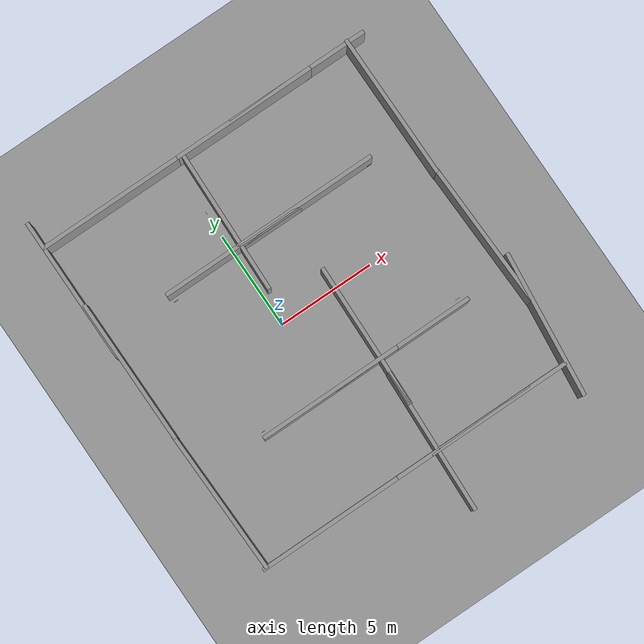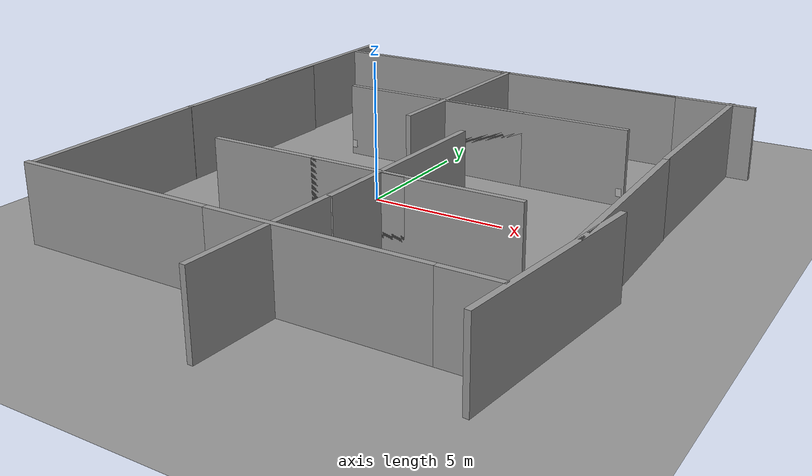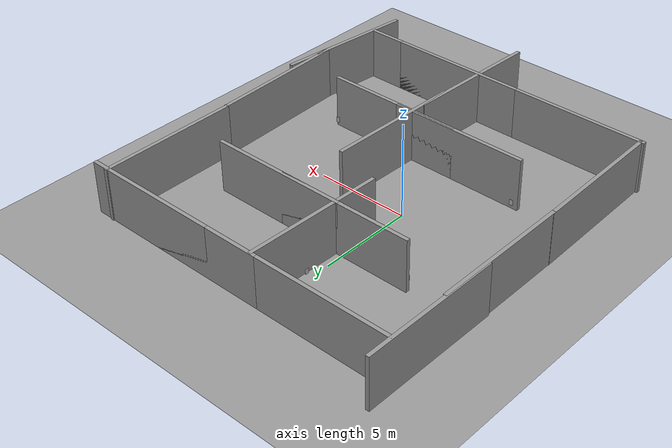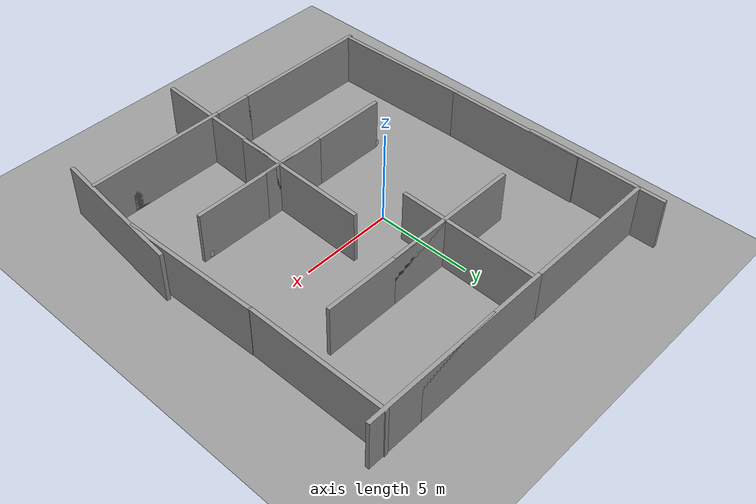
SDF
<sdf version="1.4">
 <world name="default">
  <light name="sun" type="directional">
   <pose>0 0 10 0 -0 0</pose>
   <diffuse>0.8 0.8 0.8 1</diffuse>
   <specular>0.2 0.2 0.2 1</specular>
   <attenuation>
    <range>1000</range>
    <constant>0.9</constant>
    <linear>0.01</linear>
    <quadratic>0.001</quadratic>
   </attenuation>
   <direction>0.5 0.1 -0.9</direction>
  </light>
  <scene><ambient>0.4 0.4 0.4 1</ambient><background>0.7 0.7 0.7 1</background><shadows>1</shadows></scene>
  <physics type="ode">
   <max_step_size>0.01</max_step_size>
   <real_time_factor>1</real_time_factor>
   <real_time_update_rate>100</real_time_update_rate>
   <gravity>0 0 -9.8</gravity>
  </physics>
  <model name="ground_plane_0">
   <static>1</static>
   <link name="link">
    <collision name="collision">
     <geometry><plane><normal>0 0 1</normal><size>100 100</size></plane></geometry>
     <surface><friction><ode><mu>100</mu><mu2>50</mu2></ode></friction></surface>
    </collision>
    <visual name="visual">
     <cast_shadows>0</cast_shadows>
     <geometry><plane><normal>0 0 1</normal><size>100 100</size></plane></geometry>
     <material>
      <script><uri>file://media/materials/scripts/gazebo.material</uri><name>Gazebo/Grey</name></script>
     </material>
    </visual>
    <velocity_decay><linear>0</linear><angular>0</angular></velocity_decay>
   </link>
   <pose>0.497681 0 0 0 -0 0</pose>
  </model>
  <spherical_coordinates>
   <surface_model>EARTH_WGS84</surface_model>
   <latitude_deg>0</latitude_deg>
   <longitude_deg>0</longitude_deg>
   <elevation>0</elevation>
   <heading_deg>0</heading_deg>
  </spherical_coordinates>
  <model name="grey_wall">
   <static>1</static>
   <link name="link">
    <pose>0 0 1.4 0 -0 0</pose>
    <collision name="collision"><geometry><box><size>7.5 0.2 2.8</size></box></geometry></collision>
    <visual name="visual">
     <cast_shadows>0</cast_shadows>
     <geometry><box><size>7.5 0.2 2.8</size></box></geometry>
     <material>
      <script>
       <uri>model://grey_wall/materials/scripts</uri>
       <uri>model://grey_wall/materials/textures</uri>
       <name>vrc/grey_wall</name>
      </script>
     </material>
    </visual>
    <velocity_decay><linear>0</linear><angular>0</angular></velocity_decay>
   </link>
   <pose>0 -4 0 0 -0 0</pose>
  </model>
  <model name="grey_wall_0">
   <static>1</static>
   <link name="link">
    <pose>0 0 1.4 0 -0 0</pose>
    <collision name="collision"><geometry><box><size>7.5 0.2 2.8</size></box></geometry></collision>
    <visual name="visual">
     <cast_shadows>0</cast_shadows>
     <geometry><box><size>7.5 0.2 2.8</size></box></geometry>
     <material>
      <script>
       <uri>model://grey_wall/materials/scripts</uri>
       <uri>model://grey_wall/materials/textures</uri>
       <name>vrc/grey_wall</name>
      </script>
     </material>
    </visual>
    <velocity_decay><linear>0</linear><angular>0</angular></velocity_decay>
   </link>
   <pose>0 4 0 0 -0 0</pose>
  </model>
  <model name="grey_wall_1">
   <static>1</static>
   <link name="link">
    <pose>0 0 1.4 0 -0 0</pose>
    <collision name="collision"><geometry><box><size>7.5 0.2 2.8</size></box></geometry></collision>
    <visual name="visual">
     <cast_shadows>0</cast_shadows>
     <geometry><box><size>7.5 0.2 2.8</size></box></geometry>
     <material>
      <script>
       <uri>model://grey_wall/materials/scripts</uri>
       <uri>model://grey_wall/materials/textures</uri>
       <name>vrc/grey_wall</name>
      </script>
     </material>
    </visual>
    <velocity_decay><linear>0</linear><angular>0</angular></velocity_decay>
   </link>
   <pose>4 9 0 0 -0 0</pose>
  </model>
  <model name="grey_wall_2">
   <static>1</static>
   <link name="link">
    <pose>0 0 1.4 0 -0 0</pose>
    <collision name="collision"><geometry><box><size>7.5 0.2 2.8</size></box></geometry></collision>
    <visual name="visual">
     <cast_shadows>0</cast_shadows>
     <geometry><box><size>7.5 0.2 2.8</size></box></geometry>
     <material>
      <script>
       <uri>model://grey_wall/materials/scripts</uri>
       <uri>model://grey_wall/materials/textures</uri>
       <name>vrc/grey_wall</name>
      </script>
     </material>
    </visual>
    <velocity_decay><linear>0</linear><angular>0</angular></velocity_decay>
   </link>
   <pose>-3.47074 9 0 0 -0 0</pose>
  </model>
  <model name="grey_wall_3">
   <static>1</static>
   <link name="link">
    <pose>0 0 1.4 0 -0 0</pose>
    <collision name="collision"><geometry><box><size>7.5 0.2 2.8</size></box></geometry></collision>
    <visual name="visual">
     <cast_shadows>0</cast_shadows>
     <geometry><box><size>7.5 0.2 2.8</size></box></geometry>
     <material>
      <script>
       <uri>model://grey_wall/materials/scripts</uri>
       <uri>model://grey_wall/materials/textures</uri>
       <name>vrc/grey_wall</name>
      </script>
     </material>
    </visual>
    <velocity_decay><linear>0</linear><angular>0</angular></velocity_decay>
   </link>
   <pose>4 -9 0 0 -0 0</pose>
  </model>
  <model name="grey_wall_4">
   <static>1</static>
   <link name="link">
    <pose>0 0 1.4 0 -0 0</pose>
    <collision name="collision"><geometry><box><size>7.5 0.2 2.8</size></box></geometry></collision>
    <visual name="visual">
     <cast_shadows>0</cast_shadows>
     <geometry><box><size>7.5 0.2 2.8</size></box></geometry>
     <material>
      <script>
       <uri>model://grey_wall/materials/scripts</uri>
       <uri>model://grey_wall/materials/textures</uri>
       <name>vrc/grey_wall</name>
      </script>
     </material>
    </visual>
    <velocity_decay><linear>0</linear><angular>0</angular></velocity_decay>
   </link>
   <pose>-3.42322 -9 0 0 -0 0</pose>
  </model>
  <model name="grey_wall_5">
   <static>1</static>
   <link name="link">
    <pose>0 0 1.4 0 -0 0</pose>
    <collision name="collision"><geometry><box><size>7.5 0.2 2.8</size></box></geometry></collision>
    <visual name="visual">
     <cast_shadows>0</cast_shadows>
     <geometry><box><size>7.5 0.2 2.8</size></box></geometry>
     <material>
      <script>
       <uri>model://grey_wall/materials/scripts</uri>
       <uri>model://grey_wall/materials/textures</uri>
       <name>vrc/grey_wall</name>
      </script>
     </material>
    </visual>
    <velocity_decay><linear>0</linear><angular>0</angular></velocity_decay>
   </link>
   <pose>-7.12028 2.01608 0 0 0 -1.56777</pose>
  </model>
  <model name="grey_wall_6">
   <static>1</static>
   <link name="link">
    <pose>0 0 1.4 0 -0 0</pose>
    <collision name="collision"><geometry><box><size>7.5 0.2 2.8</size></box></geometry></collision>
    <visual name="visual">
     <cast_shadows>0</cast_shadows>
     <geometry><box><size>7.5 0.2 2.8</size></box></geometry>
     <material>
      <script>
       <uri>model://grey_wall/materials/scripts</uri>
       <uri>model://grey_wall/materials/textures</uri>
       <name>vrc/grey_wall</name>
      </script>
     </material>
    </visual>
    <velocity_decay><linear>0</linear><angular>0</angular></velocity_decay>
   </link>
   <pose>-7.04106 -5.29288 0 0 0 -1.54905</pose>
  </model>
  <model name="grey_wall_7">
   <static>1</static>
   <link name="link">
    <pose>0 0 1.4 0 -0 0</pose>
    <collision name="collision"><geometry><box><size>7.5 0.2 2.8</size></box></geometry></collision>
    <visual name="visual">
     <cast_shadows>0</cast_shadows>
     <geometry><box><size>7.5 0.2 2.8</size></box></geometry>
     <material>
      <script>
       <uri>model://grey_wall/materials/scripts</uri>
       <uri>model://grey_wall/materials/textures</uri>
       <name>vrc/grey_wall</name>
      </script>
     </material>
    </visual>
    <velocity_decay><linear>0</linear><angular>0</angular></velocity_decay>
   </link>
   <pose>-7.192 6.65841 0 0 0 -1.57202</pose>
  </model>
  <model name="grey_wall_8">
   <static>1</static>
   <link name="link">
    <pose>0 0 1.4 0 -0 0</pose>
    <collision name="collision"><geometry><box><size>7.5 0.2 2.8</size></box></geometry></collision>
    <visual name="visual">
     <cast_shadows>0</cast_shadows>
     <geometry><box><size>7.5 0.2 2.8</size></box></geometry>
     <material>
      <script>
       <uri>model://grey_wall/materials/scripts</uri>
       <uri>model://grey_wall/materials/textures</uri>
       <name>vrc/grey_wall</name>
      </script>
     </material>
    </visual>
    <velocity_decay><linear>0</linear><angular>0</angular></velocity_decay>
   </link>
   <pose>6 -9 0 0 -0 0</pose>
  </model>
  <model name="grey_wall_9">
   <static>1</static>
   <link name="link">
    <pose>0 0 1.4 0 -0 0</pose>
    <collision name="collision"><geometry><box><size>7.5 0.2 2.8</size></box></geometry></collision>
    <visual name="visual">
     <cast_shadows>0</cast_shadows>
     <geometry><box><size>7.5 0.2 2.8</size></box></geometry>
     <material>
      <script>
       <uri>model://grey_wall/materials/scripts</uri>
       <uri>model://grey_wall/materials/textures</uri>
       <name>vrc/grey_wall</name>
      </script>
     </material>
    </visual>
    <velocity_decay><linear>0</linear><angular>0</angular></velocity_decay>
   </link>
   <pose>7 9 0 0 -0 0</pose>
  </model>
  <model name="grey_wall_10">
   <static>1</static>
   <link name="link">
    <pose>0 0 1.4 0 -0 0</pose>
    <collision name="collision"><geometry><box><size>7.5 0.2 2.8</size></box></geometry></collision>
    <visual name="visual">
     <cast_shadows>0</cast_shadows>
     <geometry><box><size>7.5 0.2 2.8</size></box></geometry>
     <material>
      <script>
       <uri>model://grey_wall/materials/scripts</uri>
       <uri>model://grey_wall/materials/textures</uri>
       <name>vrc/grey_wall</name>
      </script>
     </material>
    </visual>
    <velocity_decay><linear>0</linear><angular>0</angular></velocity_decay>
   </link>
   <pose>4 -4 0 0 -0 0</pose>
  </model>
  <model name="grey_wall_11">
   <static>1</static>
   <link name="link">
    <pose>0 0 1.4 0 -0 0</pose>
    <collision name="collision"><geometry><box><size>7.5 0.2 2.8</size></box></geometry></collision>
    <visual name="visual">
     <cast_shadows>0</cast_shadows>
     <geometry><box><size>7.5 0.2 2.8</size></box></geometry>
     <material>
      <script>
       <uri>model://grey_wall/materials/scripts</uri>
       <uri>model://grey_wall/materials/textures</uri>
       <name>vrc/grey_wall</name>
      </script>
     </material>
    </visual>
    <velocity_decay><linear>0</linear><angular>0</angular></velocity_decay>
   </link>
   <pose>4 4 0 0 -0 0</pose>
  </model>
  <model name="grey_wall_12">
   <static>1</static>
   <link name="link">
    <pose>0 0 1.4 0 -0 0</pose>
    <collision name="collision"><geometry><box><size>7.5 0.2 2.8</size></box></geometry></collision>
    <visual name="visual">
     <cast_shadows>0</cast_shadows>
     <geometry><box><size>7.5 0.2 2.8</size></box></geometry>
     <material>
      <script>
       <uri>model://grey_wall/materials/scripts</uri>
       <uri>model://grey_wall/materials/textures</uri>
       <name>vrc/grey_wall</name>
      </script>
     </material>
    </visual>
    <velocity_decay><linear>0</linear><angular>0</angular></velocity_decay>
   </link>
   <pose>9.85089 5.40045 0 0 0 -1.5674</pose>
  </model>
  <model name="grey_wall_13">
   <static>1</static>
   <link name="link">
    <pose>0 0 1.4 0 -0 0</pose>
    <collision name="collision"><geometry><box><size>7.5 0.2 2.8</size></box></geometry></collision>
    <visual name="visual">
     <cast_shadows>0</cast_shadows>
     <geometry><box><size>7.5 0.2 2.8</size></box></geometry>
     <material>
      <script>
       <uri>model://grey_wall/materials/scripts</uri>
       <uri>model://grey_wall/materials/textures</uri>
       <name>vrc/grey_wall</name>
      </script>
     </material>
    </visual>
    <velocity_decay><linear>0</linear><angular>0</angular></velocity_decay>
   </link>
   <pose>10 -2 0 0 0 -1.53964</pose>
  </model>
  <model name="grey_wall_14">
   <static>1</static>
   <link name="link">
    <pose>0 0 1.4 0 -0 0</pose>
    <collision name="collision"><geometry><box><size>7.5 0.2 2.8</size></box></geometry></collision>
    <visual name="visual">
     <cast_shadows>0</cast_shadows>
     <geometry><box><size>7.5 0.2 2.8</size></box></geometry>
     <material>
      <script>
       <uri>model://grey_wall/materials/scripts</uri>
       <uri>model://grey_wall/materials/textures</uri>
       <name>vrc/grey_wall</name>
      </script>
     </material>
    </visual>
    <velocity_decay><linear>0</linear><angular>0</angular></velocity_decay>
   </link>
   <pose>10 -7 0 0 0 -1.67587</pose>
  </model>
  <model name="green_image">
   <static>0</static>
   <link name="link">
    <collision name="collision">
     <geometry><box><size>0.2 0.2 0.2</size></box></geometry>
     <surface><friction><ode><mu>100</mu><mu2>50</mu2></ode></friction></surface>
    </collision>
    <visual name="visual">
     <pose>-6 -0.11 0.4 1.57 -0 0</pose>
     <cast_shadows>0</cast_shadows>
     <geometry><plane><normal>0 0 1</normal><size>0.21 0.297</size></plane></geometry>
     <material>
      <script>
       <uri>model://green_image/materials/scripts</uri>
       <uri>model://green_image/materials/textures</uri>
       <name>green_image/Image</name>
      </script>
     </material>
    </visual>
    <velocity_decay><linear>0</linear><angular>0</angular></velocity_decay>
    <inertial>
     <inertia><ixx>1</ixx><ixy>0</ixy><ixz>0</ixz><iyy>1</iyy><iyz>0</iyz><izz>1</izz></inertia>
     <mass>1</mass>
    </inertial>
   </link>
   <pose>2.50184 3.79868 0.099998 -2.2e-05 3e-06 -0.00097</pose>
  </model>
  <model name="red_image">
   <static>0</static>
   <link name="link">
    <collision name="collision">
     <geometry><box><size>0.2 0.2 0.2</size></box></geometry>
     <surface><friction><ode><mu>100</mu><mu2>50</mu2></ode></friction></surface>
    </collision>
    <visual name="visual">
     <pose>-6 -0.11 0.4 1.57 -0 0</pose>
     <cast_shadows>0</cast_shadows>
     <geometry><plane><normal>0 0 1</normal><size>0.21 0.297</size></plane></geometry>
     <material>
      <script>
       <uri>model://red_image/materials/scripts</uri>
       <uri>model://red_image/materials/textures</uri>
       <name>red_image/Image</name>
      </script>
     </material>
    </visual>
    <velocity_decay><linear>0</linear><angular>0</angular></velocity_decay>
    <inertial>
     <inertia><ixx>1</ixx><ixy>0</ixy><ixz>0</ixz><iyy>1</iyy><iyz>0</iyz><izz>1</izz></inertia>
     <mass>1</mass>
    </inertial>
   </link>
   <pose>13.5619 4 0.099998 -2.2e-05 -3e-06 6.2e-05</pose>
  </model>
  <model name="red_image_flip_0">
   <static>0</static>
   <link name="link">
    <collision name="collision">
     <geometry><box><size>0.2 0.2 0.2</size></box></geometry>
     <surface><friction><ode><mu>100</mu><mu2>50</mu2></ode></friction></surface>
    </collision>
    <visual name="visual">
     <pose>-6 -0.11 0.4 1.57 4.33681e-19 3.14</pose>
     <cast_shadows>0</cast_shadows>
     <geometry><plane><normal>0 0 1</normal><size>0.21 0.297</size></plane></geometry>
     <material>
      <script>
       <uri>model://red_image/materials/scripts</uri>
       <uri>model://red_image/materials/textures</uri>
       <name>red_image/Image</name>
      </script>
     </material>
    </visual>
    <velocity_decay><linear>0</linear><angular>0</angular></velocity_decay>
    <inertial>
     <inertia><ixx>1</ixx><ixy>0</ixy><ixz>0</ixz><iyy>1</iyy><iyz>0</iyz><izz>1</izz></inertia>
     <mass>1</mass>
    </inertial>
   </link>
   <pose>2.46828 -3.56897 0.099998 -3e-06 -2.2e-05 5e-06</pose>
  </model>
  <model name="red_image_flip_1">
   <static>0</static>
   <link name="link">
    <collision name="collision">
     <geometry><box><size>0.2 0.2 0.2</size></box></geometry>
     <surface><friction><ode><mu>100</mu><mu2>50</mu2></ode></friction></surface>
    </collision>
    <visual name="visual">
     <pose>-6 -0.11 0.4 1.57 4.33681e-19 3.14</pose>
     <cast_shadows>0</cast_shadows>
     <geometry><plane><normal>0 0 1</normal><size>0.21 0.297</size></plane></geometry>
     <material>
      <script>
       <uri>model://red_image/materials/scripts</uri>
       <uri>model://red_image/materials/textures</uri>
       <name>red_image/Image</name>
      </script>
     </material>
    </visual>
    <velocity_decay><linear>0</linear><angular>0</angular></velocity_decay>
    <inertial>
     <inertia><ixx>1</ixx><ixy>0</ixy><ixz>0</ixz><iyy>1</iyy><iyz>0</iyz><izz>1</izz></inertia>
     <mass>1</mass>
    </inertial>
   </link>
   <pose>13.4796 -3.55565 0.099998 -2.2e-05 -3e-06 3.3e-05</pose>
  </model>
  <model name="grey_wall_15">
   <static>1</static>
   <link name="link">
    <pose>0 0 1.4 0 -0 0</pose>
    <collision name="collision"><geometry><box><size>7.5 0.2 2.8</size></box></geometry></collision>
    <visual name="visual">
     <cast_shadows>0</cast_shadows>
     <geometry><box><size>7.5 0.2 2.8</size></box></geometry>
     <material>
      <script>
       <uri>model://grey_wall/materials/scripts</uri>
       <uri>model://grey_wall/materials/textures</uri>
       <name>vrc/grey_wall</name>
      </script>
     </material>
    </visual>
    <velocity_decay><linear>0</linear><angular>0</angular></velocity_decay>
   </link>
   <pose>0.463994 5.29482 0 0 0 -1.5972</pose>
  </model>
  <model name="grey_wall_16">
   <static>1</static>
   <link name="link">
    <pose>0 0 1.4 0 -0 0</pose>
    <collision name="collision"><geometry><box><size>7.5 0.2 2.8</size></box></geometry></collision>
    <visual name="visual">
     <cast_shadows>0</cast_shadows>
     <geometry><box><size>7.5 0.2 2.8</size></box></geometry>
     <material>
      <script>
       <uri>model://grey_wall/materials/scripts</uri>
       <uri>model://grey_wall/materials/textures</uri>
       <name>vrc/grey_wall</name>
      </script>
     </material>
    </visual>
    <velocity_decay><linear>0</linear><angular>0</angular></velocity_decay>
   </link>
   <pose>2.84496 -2.78222 0 0 0 -1.59602</pose>
  </model>
  <model name="grey_wall_17">
   <static>1</static>
   <link name="link">
    <pose>0 0 1.4 0 -0 0</pose>
    <collision name="collision"><geometry><box><size>7.5 0.2 2.8</size></box></geometry></collision>
    <visual name="visual">
     <cast_shadows>0</cast_shadows>
     <geometry><box><size>7.5 0.2 2.8</size></box></geometry>
     <material>
      <script>
       <uri>model://grey_wall/materials/scripts</uri>
       <uri>model://grey_wall/materials/textures</uri>
       <name>vrc/grey_wall</name>
      </script>
     </material>
    </visual>
    <velocity_decay><linear>0</linear><angular>0</angular></velocity_decay>
   </link>
   <pose>2.6182 -8.49129 0 0 0 -1.61149</pose>
  </model>
  <model name="cluedo_character_0">
   <static>0</static>
   <link name="link">
    <collision name="collision">
     <geometry><box><size>0.2 0.2 0.2</size></box></geometry>
     <surface><friction><ode><mu>100</mu><mu2>50</mu2></ode></friction></surface>
    </collision>
    <visual name="visual">
     <pose>-1 -0.7 0.4 1.57 1.11022e-16 -1.57319</pose>
     <cast_shadows>0</cast_shadows>
     <geometry><plane><normal>0 0 1</normal><size>0.21 0.297</size></plane></geometry>
     <material>
      <script>
       <uri>model://cluedo_character/materials/scripts</uri>
       <uri>model://cluedo_character/materials/textures</uri>
       <name>Cluedo_character/Image</name>
      </script>
     </material>
    </visual>
    <velocity_decay><linear>0</linear><angular>0</angular></velocity_decay>
    <inertial>
     <inertia><ixx>1</ixx><ixy>0</ixy><ixz>0</ixz><iyy>1</iyy><iyz>0</iyz><izz>1</izz></inertia>
     <mass>1</mass>
    </inertial>
   </link>
   <pose>0.999996 7 0.099026 5e-06 -4.4e-05 -2.5e-05</pose>
  </model>
 </world>
</sdf>
